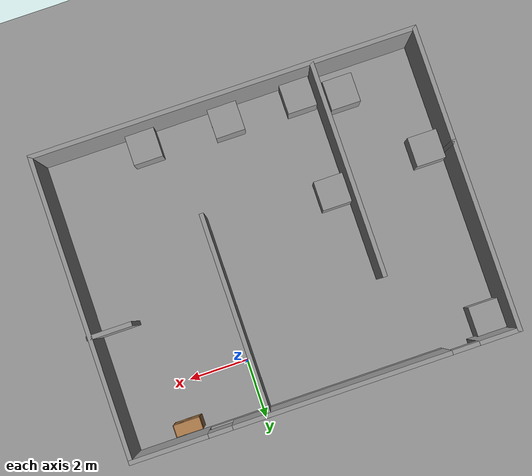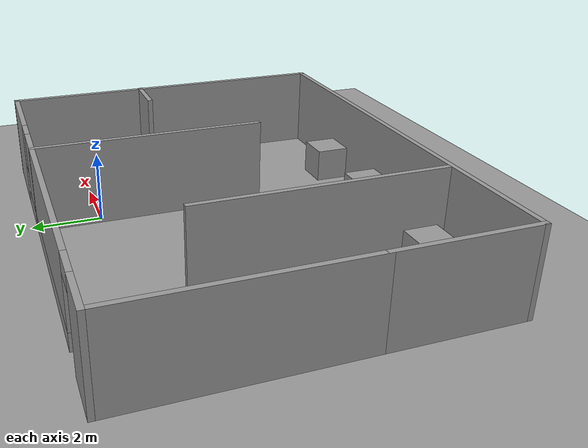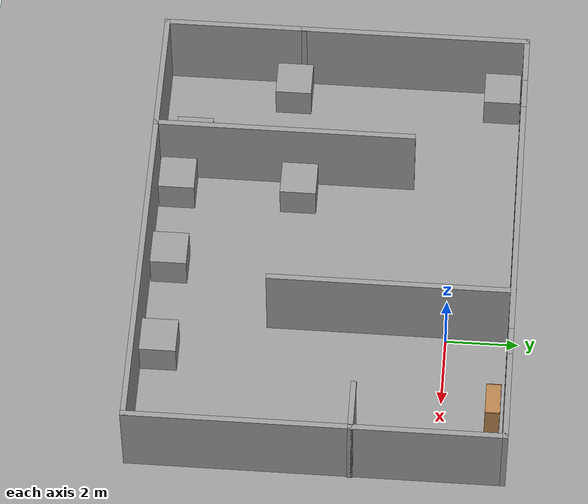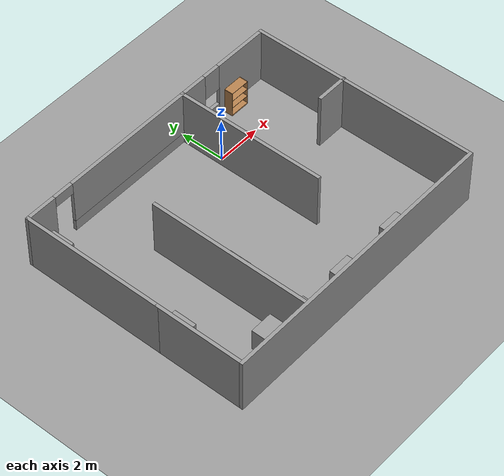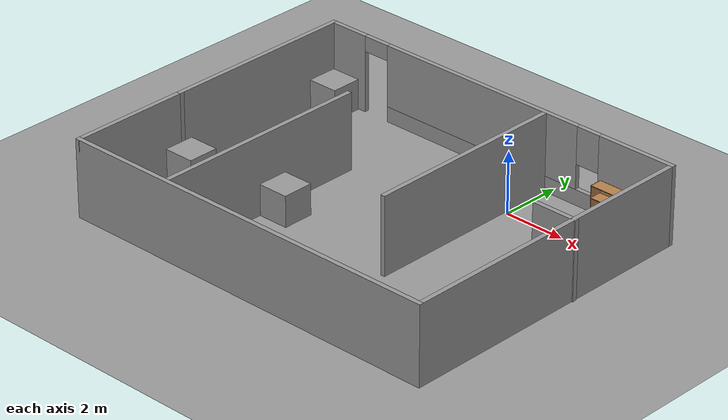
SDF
<sdf version="1.6">
 <world name="default">
  <light name="sun" type="directional">
   <pose>0 0 10 0 -0 0</pose>
   <diffuse>0.8 0.8 0.8 1</diffuse>
   <specular>0.2 0.2 0.2 1</specular>
   <attenuation>
    <range>1000</range>
    <constant>0.9</constant>
    <linear>0.01</linear>
    <quadratic>0.001</quadratic>
   </attenuation>
   <direction>0.5 0.1 -0.9</direction>
  </light>
  <scene><ambient>0.4 0.4 0.4 1</ambient><background>0.7 0.7 0.7 1</background><shadows>1</shadows></scene>
  <physics name="default_physics" default="0" type="ode">
   <max_step_size>0.01</max_step_size>
   <real_time_factor>1</real_time_factor>
   <real_time_update_rate>100</real_time_update_rate>
  </physics>
  <model name="bookshelf">
   <static>1</static>
   <link name="link">
    <inertial><mass>1</mass></inertial>
    <collision name="back">
     <pose>0 0.005 0.6 0 -0 0</pose>
     <geometry><box><size>0.9 0.01 1.2</size></box></geometry>
    </collision>
    <visual name="visual1">
     <pose>0 0.005 0.6 0 -0 0</pose>
     <geometry><box><size>0.9 0.01 1.2</size></box></geometry>
     <material>
      <script><uri>file://media/materials/scripts/gazebo.material</uri><name>Gazebo/Wood</name></script>
     </material>
    </visual>
    <collision name="left_side">
     <pose>0.45 -0.195 0.6 0 -0 0</pose>
     <geometry><box><size>0.02 0.4 1.2</size></box></geometry>
    </collision>
    <visual name="visual2">
     <pose>0.45 -0.195 0.6 0 -0 0</pose>
     <geometry><box><size>0.02 0.4 1.2</size></box></geometry>
     <material>
      <script><uri>file://media/materials/scripts/gazebo.material</uri><name>Gazebo/Wood</name></script>
     </material>
    </visual>
    <collision name="right_side">
     <pose>-0.45 -0.195 0.6 0 -0 0</pose>
     <geometry><box><size>0.02 0.4 1.2</size></box></geometry>
    </collision>
    <visual name="visual3">
     <pose>-0.45 -0.195 0.6 0 -0 0</pose>
     <geometry><box><size>0.02 0.4 1.2</size></box></geometry>
     <material>
      <script><uri>file://media/materials/scripts/gazebo.material</uri><name>Gazebo/Wood</name></script>
     </material>
    </visual>
    <collision name="bottom">
     <pose>0 -0.195 0.03 0 -0 0</pose>
     <geometry><box><size>0.88 0.4 0.06</size></box></geometry>
    </collision>
    <visual name="visual4">
     <pose>0 -0.195 0.03 0 -0 0</pose>
     <geometry><box><size>0.88 0.4 0.06</size></box></geometry>
     <material>
      <script><uri>file://media/materials/scripts/gazebo.material</uri><name>Gazebo/Wood</name></script>
     </material>
    </visual>
    <collision name="top">
     <pose>0 -0.195 1.19 0 -0 0</pose>
     <geometry><box><size>0.88 0.4 0.02</size></box></geometry>
    </collision>
    <visual name="visual5">
     <pose>0 -0.195 1.19 0 -0 0</pose>
     <geometry><box><size>0.88 0.4 0.02</size></box></geometry>
     <material>
      <script><uri>file://media/materials/scripts/gazebo.material</uri><name>Gazebo/Wood</name></script>
     </material>
    </visual>
    <collision name="low_shelf">
     <pose>0 -0.195 0.43 0 -0 0</pose>
     <geometry><box><size>0.88 0.4 0.02</size></box></geometry>
    </collision>
    <visual name="visual6">
     <pose>0 -0.195 0.43 0 -0 0</pose>
     <geometry><box><size>0.88 0.4 0.02</size></box></geometry>
     <material>
      <script><uri>file://media/materials/scripts/gazebo.material</uri><name>Gazebo/Wood</name></script>
     </material>
    </visual>
    <collision name="high_shelf">
     <pose>0 -0.195 0.8 0 -0 0</pose>
     <geometry><box><size>0.88 0.4 0.02</size></box></geometry>
    </collision>
    <visual name="visual7">
     <pose>0 -0.195 0.8 0 -0 0</pose>
     <geometry><box><size>0.88 0.4 0.02</size></box></geometry>
     <material>
      <script><uri>file://media/materials/scripts/gazebo.material</uri><name>Gazebo/Wood</name></script>
     </material>
    </visual>
    <velocity_decay><linear>0</linear><angular>0</angular></velocity_decay>
   </link>
   <pose>2.45391 1.5881 0 0 -0 0</pose>
  </model>
  <model name="ground_plane_0">
   <static>1</static>
   <link name="link">
    <collision name="collision">
     <geometry><plane><normal>0 0 1</normal><size>100 100</size></plane></geometry>
     <surface><friction><ode><mu>100</mu><mu2>50</mu2></ode></friction></surface>
    </collision>
    <visual name="visual">
     <cast_shadows>0</cast_shadows>
     <geometry><plane><normal>0 0 1</normal><size>100 100</size></plane></geometry>
     <material>
      <script><uri>file://media/materials/scripts/gazebo.material</uri><name>Gazebo/Grey</name></script>
     </material>
    </visual>
    <velocity_decay><linear>0</linear><angular>0</angular></velocity_decay>
   </link>
   <pose>0.497681 0 0 0 -0 0</pose>
  </model>
  <gravity>0 0 -9.8</gravity>
  <magnetic_field>6e-06 2.3e-05 -4.2e-05</magnetic_field>
  <atmosphere type="adiabatic"/>
  <spherical_coordinates>
   <surface_model>EARTH_WGS84</surface_model>
   <latitude_deg>0</latitude_deg>
   <longitude_deg>0</longitude_deg>
   <elevation>0</elevation>
   <heading_deg>0</heading_deg>
  </spherical_coordinates>
  <model name="newworld">
   <pose>-2.0438 -3.27922 0 0 -0 0</pose>
   <link name="Wall_12">
    <collision name="Wall_12_Collision">
     <geometry><box><size>4 0.15 2.5</size></box></geometry>
     <pose>0 0 1.25 0 -0 0</pose>
    </collision>
    <visual name="Wall_12_Visual">
     <pose>0 0 1.25 0 -0 0</pose>
     <geometry><box><size>4 0.15 2.5</size></box></geometry>
     <material>
      <script><uri>file://media/materials/scripts/gazebo.material</uri><name>Gazebo/Grey</name></script>
      <ambient>1 1 1 1</ambient>
     </material>
    </visual>
    <pose>-6.44085 -3.12629 0 0 -0 1.5708</pose>
   </link>
   <link name="Wall_13">
    <collision name="Wall_13_Collision">
     <geometry><box><size>0.15 0.15 2.5</size></box></geometry>
     <pose>0 0 1.25 0 -0 0</pose>
    </collision>
    <visual name="Wall_13_Visual">
     <pose>0 0 1.25 0 -0 0</pose>
     <geometry><box><size>0.15 0.15 2.5</size></box></geometry>
     <material>
      <script><uri>file://media/materials/scripts/gazebo.material</uri><name>Gazebo/Grey</name></script>
      <ambient>1 1 1 1</ambient>
     </material>
    </visual>
    <pose>-6.44085 -1.20129 0 0 -0 0</pose>
   </link>
   <link name="Wall_18">
    <collision name="Wall_18_Collision">
     <geometry><box><size>13 0.15 2.5</size></box></geometry>
     <pose>0 0 1.25 0 -0 0</pose>
    </collision>
    <visual name="Wall_18_Visual">
     <pose>0 0 1.25 0 -0 0</pose>
     <geometry><box><size>13 0.15 2.5</size></box></geometry>
     <material>
      <script><uri>file://media/materials/scripts/gazebo.material</uri><name>Gazebo/Grey</name></script>
      <ambient>1 1 1 1</ambient>
     </material>
    </visual>
    <pose>-0.015851 -5.05129 0 0 -0 0</pose>
   </link>
   <link name="Wall_19">
    <collision name="Wall_19_Collision">
     <geometry><box><size>10.25 0.15 2.5</size></box></geometry>
     <pose>0 0 1.25 0 -0 0</pose>
    </collision>
    <visual name="Wall_19_Visual">
     <pose>0 0 1.25 0 -0 0</pose>
     <geometry><box><size>10.25 0.15 2.5</size></box></geometry>
     <material>
      <script><uri>file://media/materials/scripts/gazebo.material</uri><name>Gazebo/Grey</name></script>
      <ambient>1 1 1 1</ambient>
     </material>
    </visual>
    <pose>6.40915 -0.001288 0 0 -0 1.5708</pose>
   </link>
   <link name="Wall_20">
    <pose>-0.015851 5.04871 0 0 -0 3.14159</pose>
    <visual name="Wall_20_Visual_0">
     <pose>-5.1895 0 1.25 0 -0 0</pose>
     <geometry><box><size>2.621 0.15 2.5</size></box></geometry>
     <material>
      <script><uri>file://media/materials/scripts/gazebo.material</uri><name>Gazebo/Grey</name></script>
      <ambient>1 1 1 1</ambient>
     </material>
    </visual>
    <collision name="Wall_20_Collision_0">
     <geometry><box><size>2.621 0.15 2.5</size></box></geometry>
     <pose>-5.1895 0 1.25 0 -0 0</pose>
    </collision>
    <visual name="Wall_20_Visual_1">
     <pose>5.79476 0 1.25 0 -0 0</pose>
     <geometry><box><size>1.41047 0.15 2.5</size></box></geometry>
     <material>
      <script><uri>file://media/materials/scripts/gazebo.material</uri><name>Gazebo/Grey</name></script>
      <ambient>1 1 1 1</ambient>
     </material>
    </visual>
    <collision name="Wall_20_Collision_1">
     <geometry><box><size>1.41047 0.15 2.5</size></box></geometry>
     <pose>5.79476 0 1.25 0 -0 0</pose>
    </collision>
    <visual name="Wall_20_Visual_2">
     <pose>0.155264 0 0.25 0 -0 0</pose>
     <geometry><box><size>8.06853 0.15 0.5</size></box></geometry>
     <material>
      <script><uri>file://media/materials/scripts/gazebo.material</uri><name>Gazebo/Grey</name></script>
      <ambient>1 1 1 1</ambient>
     </material>
    </visual>
    <collision name="Wall_20_Collision_2">
     <geometry><box><size>8.06853 0.15 0.5</size></box></geometry>
     <pose>0.155264 0 0.25 0 -0 0</pose>
    </collision>
    <visual name="Wall_20_Visual_3">
     <pose>0.555264 0 1.5 0 -0 0</pose>
     <geometry><box><size>7.26853 0.15 2</size></box></geometry>
     <material>
      <script><uri>file://media/materials/scripts/gazebo.material</uri><name>Gazebo/Grey</name></script>
      <ambient>1 1 1 1</ambient>
     </material>
    </visual>
    <collision name="Wall_20_Collision_3">
     <geometry><box><size>7.26853 0.15 2</size></box></geometry>
     <pose>0.555264 0 1.5 0 -0 0</pose>
    </collision>
    <visual name="Wall_20_Visual_4">
     <pose>-3.479 0 1.9 0 -0 0</pose>
     <geometry><box><size>0.8 0.15 1.2</size></box></geometry>
     <material>
      <script><uri>file://media/materials/scripts/gazebo.material</uri><name>Gazebo/Grey</name></script>
      <ambient>1 1 1 1</ambient>
     </material>
    </visual>
    <collision name="Wall_20_Collision_4">
     <geometry><box><size>0.8 0.15 1.2</size></box></geometry>
     <pose>-3.479 0 1.9 0 -0 0</pose>
    </collision>
    <visual name="Wall_20_Visual_5">
     <pose>4.63953 0 2.25 0 -0 0</pose>
     <geometry><box><size>0.9 0.15 0.5</size></box></geometry>
     <material>
      <script><uri>file://media/materials/scripts/gazebo.material</uri><name>Gazebo/Grey</name></script>
      <ambient>1 1 1 1</ambient>
     </material>
    </visual>
    <collision name="Wall_20_Collision_5">
     <geometry><box><size>0.9 0.15 0.5</size></box></geometry>
     <pose>4.63953 0 2.25 0 -0 0</pose>
    </collision>
   </link>
   <link name="Wall_21">
    <collision name="Wall_21_Collision">
     <geometry><box><size>6.4 0.15 2.5</size></box></geometry>
     <pose>0 0 1.25 0 -0 0</pose>
    </collision>
    <visual name="Wall_21_Visual">
     <pose>0 0 1.25 0 -0 0</pose>
     <geometry><box><size>6.4 0.15 2.5</size></box></geometry>
     <material>
      <script><uri>file://media/materials/scripts/gazebo.material</uri><name>Gazebo/Grey</name></script>
      <ambient>1 1 1 1</ambient>
     </material>
    </visual>
    <pose>-6.44085 1.92371 0 0 0 -1.5708</pose>
   </link>
   <link name="Wall_24">
    <collision name="Wall_24_Collision">
     <geometry><box><size>6.75 0.15 2.5</size></box></geometry>
     <pose>0 0 1.25 0 -0 0</pose>
    </collision>
    <visual name="Wall_24_Visual">
     <pose>0 0 1.25 0 -0 0</pose>
     <geometry><box><size>6.75 0.15 2.5</size></box></geometry>
     <material>
      <script><uri>file://media/materials/scripts/gazebo.material</uri><name>Gazebo/Grey</name></script>
      <ambient>1 1 1 1</ambient>
     </material>
    </visual>
    <pose>1.85991 1.75129 0 0 0 -1.5708</pose>
   </link>
   <link name="Wall_26">
    <collision name="Wall_26_Collision">
     <geometry><box><size>7.25 0.15 2.5</size></box></geometry>
     <pose>0 0 1.25 0 -0 0</pose>
    </collision>
    <visual name="Wall_26_Visual">
     <pose>0 0 1.25 0 -0 0</pose>
     <geometry><box><size>7.25 0.15 2.5</size></box></geometry>
     <material>
      <script><uri>file://media/materials/scripts/gazebo.material</uri><name>Gazebo/Grey</name></script>
      <ambient>1 1 1 1</ambient>
     </material>
    </visual>
    <pose>-2.98392 -1.49571 0 0 -0 1.5708</pose>
   </link>
   <link name="Wall_28">
    <collision name="Wall_28_Collision">
     <geometry><box><size>0.16 0.15 2.5</size></box></geometry>
     <pose>0 0 1.25 0 -0 0</pose>
    </collision>
    <visual name="Wall_28_Visual">
     <pose>0 0 1.25 0 -0 0</pose>
     <geometry><box><size>0.16 0.15 2.5</size></box></geometry>
     <material>
      <script><uri>file://media/materials/scripts/gazebo.material</uri><name>Gazebo/Grey</name></script>
      <ambient>1 1 1 1</ambient>
     </material>
    </visual>
    <pose>6.43585 0.957909 0 0 -0 0</pose>
   </link>
   <link name="Wall_29">
    <collision name="Wall_29_Collision">
     <geometry><box><size>1.5 0.15 2.5</size></box></geometry>
     <pose>0 0 1.25 0 -0 0</pose>
    </collision>
    <visual name="Wall_29_Visual">
     <pose>0 0 1.25 0 -0 0</pose>
     <geometry><box><size>1.5 0.15 2.5</size></box></geometry>
     <material>
      <script><uri>file://media/materials/scripts/gazebo.material</uri><name>Gazebo/Grey</name></script>
      <ambient>1 1 1 1</ambient>
     </material>
    </visual>
    <pose>5.76585 0.957909 0 0 -0 3.14159</pose>
   </link>
   <static>1</static>
  </model>
  <model name="unit_box_0">
   <pose>-7.84533 -4.71439 0.49907 0.0001 -0 2e-06</pose>
   <link name="link">
    <inertial>
     <mass>1</mass>
     <inertia>
      <ixx>0.166667</ixx>
      <ixy>0</ixy>
      <ixz>0</ixz>
      <iyy>0.166667</iyy>
      <iyz>0</iyz>
      <izz>0.166667</izz>
     </inertia>
    </inertial>
    <collision name="collision"><geometry><box><size>1 1 1</size></box></geometry></collision>
    <visual name="visual">
     <geometry><box><size>1 1 1</size></box></geometry>
     <material>
      <script><name>Gazebo/Grey</name><uri>file://media/materials/scripts/gazebo.material</uri></script>
     </material>
    </visual>
   </link>
  </model>
  <model name="unit_box_1">
   <pose>-4.45302 -4.33722 0.49965 -5e-06 -0.0007 0.000111</pose>
   <link name="link">
    <inertial>
     <mass>1</mass>
     <inertia>
      <ixx>0.166667</ixx>
      <ixy>0</ixy>
      <ixz>0</ixz>
      <iyy>0.166667</iyy>
      <iyz>0</iyz>
      <izz>0.166667</izz>
     </inertia>
    </inertial>
    <collision name="collision"><geometry><box><size>1 1 1</size></box></geometry></collision>
    <visual name="visual">
     <geometry><box><size>1 1 1</size></box></geometry>
     <material>
      <script><name>Gazebo/Grey</name><uri>file://media/materials/scripts/gazebo.material</uri></script>
     </material>
    </visual>
   </link>
  </model>
  <model name="unit_box_2">
   <pose>-7.8979 1.1684 0.49907 0.0001 -0 0</pose>
   <link name="link">
    <inertial>
     <mass>1</mass>
     <inertia>
      <ixx>0.166667</ixx>
      <ixy>0</ixy>
      <ixz>0</ixz>
      <iyy>0.166667</iyy>
      <iyz>0</iyz>
      <izz>0.166667</izz>
     </inertia>
    </inertial>
    <collision name="collision"><geometry><box><size>1 1 1</size></box></geometry></collision>
    <visual name="visual">
     <geometry><box><size>1 1 1</size></box></geometry>
     <material>
      <script><name>Gazebo/Grey</name><uri>file://media/materials/scripts/gazebo.material</uri></script>
     </material>
    </visual>
   </link>
  </model>
  <model name="unit_box_3">
   <pose>-1.89673 -7.71631 0.49967 0.00066 -0 1.4e-05</pose>
   <link name="link">
    <inertial>
     <mass>1</mass>
     <inertia>
      <ixx>0.166667</ixx>
      <ixy>0</ixy>
      <ixz>0</ixz>
      <iyy>0.166667</iyy>
      <iyz>0</iyz>
      <izz>0.166667</izz>
     </inertia>
    </inertial>
    <collision name="collision"><geometry><box><size>1 1 1</size></box></geometry></collision>
    <visual name="visual">
     <geometry><box><size>1 1 1</size></box></geometry>
     <material>
      <script><name>Gazebo/Grey</name><uri>file://media/materials/scripts/gazebo.material</uri></script>
     </material>
    </visual>
   </link>
  </model>
  <model name="unit_box_4">
   <pose>-5.79704 -7.37831 0.49967 0.00066 -0 -1e-06</pose>
   <link name="link">
    <inertial>
     <mass>1</mass>
     <inertia>
      <ixx>0.166667</ixx>
      <ixy>0</ixy>
      <ixz>0</ixz>
      <iyy>0.166667</iyy>
      <iyz>0</iyz>
      <izz>0.166667</izz>
     </inertia>
    </inertial>
    <collision name="collision"><geometry><box><size>1 1 1</size></box></geometry></collision>
    <visual name="visual">
     <geometry><box><size>1 1 1</size></box></geometry>
     <material>
      <script><name>Gazebo/Grey</name><uri>file://media/materials/scripts/gazebo.material</uri></script>
     </material>
    </visual>
   </link>
  </model>
  <model name="unit_box_5">
   <pose>-4.40295 -7.72456 0.49907 0.0001 -0 7e-06</pose>
   <link name="link">
    <inertial>
     <mass>1</mass>
     <inertia>
      <ixx>0.166667</ixx>
      <ixy>0</ixy>
      <ixz>0</ixz>
      <iyy>0.166667</iyy>
      <iyz>0</iyz>
      <izz>0.166667</izz>
     </inertia>
    </inertial>
    <collision name="collision"><geometry><box><size>1 1 1</size></box></geometry></collision>
    <visual name="visual">
     <geometry><box><size>1 1 1</size></box></geometry>
     <material>
      <script><name>Gazebo/Grey</name><uri>file://media/materials/scripts/gazebo.material</uri></script>
     </material>
    </visual>
   </link>
  </model>
  <model name="unit_box_6">
   <pose>0.940278 -7.74778 0.49907 0.0001 -0 -6.2e-05</pose>
   <link name="link">
    <inertial>
     <mass>1</mass>
     <inertia>
      <ixx>0.166667</ixx>
      <ixy>0</ixy>
      <ixz>0</ixz>
      <iyy>0.166667</iyy>
      <iyz>0</iyz>
      <izz>0.166667</izz>
     </inertia>
    </inertial>
    <collision name="collision"><geometry><box><size>1 1 1</size></box></geometry></collision>
    <visual name="visual">
     <geometry><box><size>1 1 1</size></box></geometry>
     <material>
      <script><name>Gazebo/Grey</name><uri>file://media/materials/scripts/gazebo.material</uri></script>
     </material>
    </visual>
   </link>
  </model>
 </world>
</sdf>
